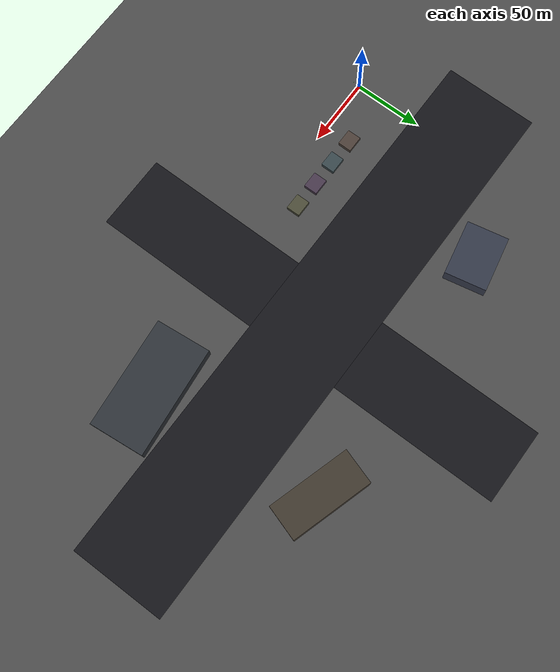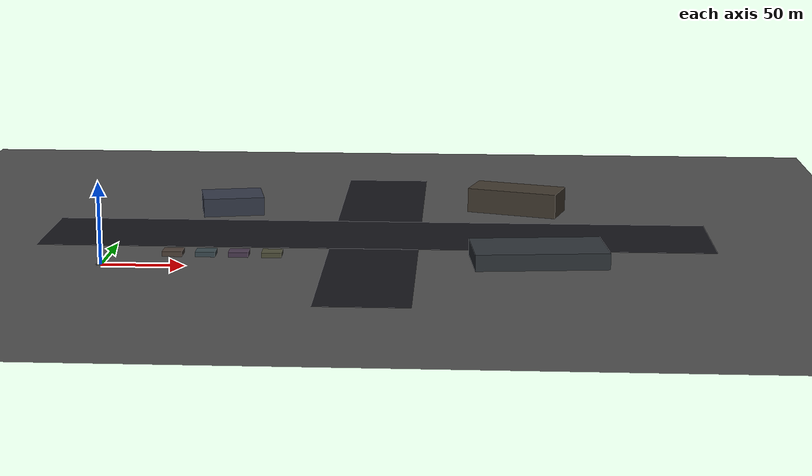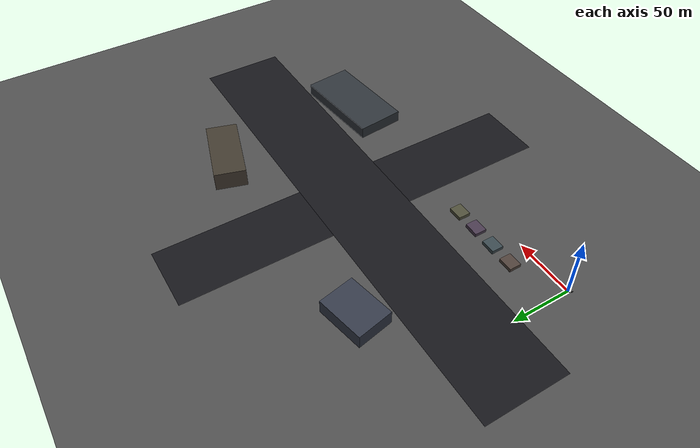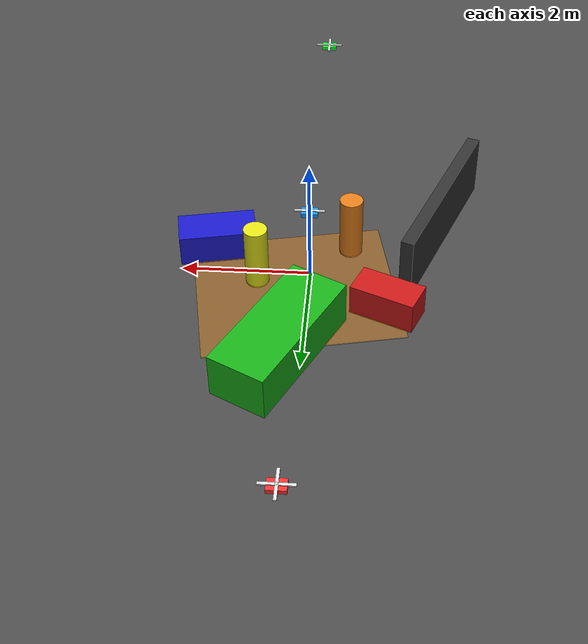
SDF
<?xml version="1.0" ?>
<sdf version="1.7">
  <world name="atlas_demo_world">

    <!-- Inline sun light (avoids external model://sun dependency). -->
    <light name="sun" type="directional">
      <cast_shadows>true</cast_shadows>
      <pose>0 0 10 0 0 0</pose>
      <diffuse>1 1 1 1</diffuse>
      <specular>0.1 0.1 0.1 1</specular>
      <attenuation>
        <range>1000</range>
        <constant>0.9</constant>
        <linear>0.01</linear>
        <quadratic>0.001</quadratic>
      </attenuation>
      <direction>-0.5 0.1 -1</direction>
    </light>

    <!-- Inline ground plane (avoids external model://ground_plane dependency). -->
    <model name="ground_plane">
      <static>true</static>
      <pose>0 0 0 0 0 0</pose>
      <link name="link">
        <collision name="collision">
          <geometry>
            <plane>
              <normal>0 0 1</normal>
              <size>900 700</size>
            </plane>
          </geometry>
        </collision>
        <visual name="visual">
          <geometry>
            <plane>
              <normal>0 0 1</normal>
              <size>900 700</size>
            </plane>
          </geometry>
          <material>
            <ambient>0.2 0.2 0.2 1</ambient>
            <diffuse>0.3 0.3 0.3 1</diffuse>
          </material>
        </visual>
      </link>
    </model>

    <!-- Gazebo Sim systems required for physics, scene updates, and sensor rendering. -->
    <plugin filename="gz-sim-physics-system" name="gz::sim::systems::Physics" />
    <plugin filename="gz-sim-user-commands-system" name="gz::sim::systems::UserCommands" />
    <plugin filename="gz-sim-scene-broadcaster-system" name="gz::sim::systems::SceneBroadcaster" />
    <plugin filename="gz-sim-sensors-system" name="gz::sim::systems::Sensors">
      <!-- Prefer Ogre1 for maximum compatibility with software rendering (llvmpipe/Xvfb). -->
      <render_engine>ogre</render_engine>
    </plugin>

    <!-- Demo environment: simple suburban block (no external assets).
         Goal: look like a real patrol context, but keep it lightweight/stable.
    -->
    <model name="road_main">
      <static>true</static>
      <pose>160 80 0.01 0 0 0</pose>
      <link name="link">
        <visual name="visual">
          <geometry>
            <plane>
              <normal>0 0 1</normal>
              <size>420 70</size>
            </plane>
          </geometry>
          <material>
            <ambient>0.06 0.06 0.07 1</ambient>
            <diffuse>0.08 0.08 0.10 1</diffuse>
          </material>
        </visual>
      </link>
    </model>

    <model name="road_cross">
      <static>true</static>
      <pose>160 80 0.011 0 0 1.5708</pose>
      <link name="link">
        <visual name="visual">
          <geometry>
            <plane>
              <normal>0 0 1</normal>
              <size>320 55</size>
            </plane>
          </geometry>
          <material>
            <ambient>0.06 0.06 0.07 1</ambient>
            <diffuse>0.08 0.08 0.10 1</diffuse>
          </material>
        </visual>
      </link>
    </model>

    <model name="building_block_1">
      <static>true</static>
      <pose>60 140 6 0 0 0.2</pose>
      <link name="link">
        <collision name="collision"><geometry><box><size>40 30 12</size></box></geometry></collision>
        <visual name="visual">
          <geometry><box><size>40 30 12</size></box></geometry>
          <material><ambient>0.20 0.22 0.28 1</ambient><diffuse>0.20 0.22 0.28 1</diffuse></material>
        </visual>
      </link>
    </model>

    <model name="building_block_2">
      <static>true</static>
      <pose>250 150 8 0 0 -0.3</pose>
      <link name="link">
        <collision name="collision"><geometry><box><size>60 26 16</size></box></geometry></collision>
        <visual name="visual">
          <geometry><box><size>60 26 16</size></box></geometry>
          <material><ambient>0.25 0.22 0.18 1</ambient><diffuse>0.25 0.22 0.18 1</diffuse></material>
        </visual>
      </link>
    </model>

    <model name="warehouse_1">
      <static>true</static>
      <pose>260 20 5 0 0 0.1</pose>
      <link name="link">
        <collision name="collision"><geometry><box><size>80 40 10</size></box></geometry></collision>
        <visual name="visual">
          <geometry><box><size>80 40 10</size></box></geometry>
          <material><ambient>0.18 0.20 0.22 1</ambient><diffuse>0.18 0.20 0.22 1</diffuse></material>
        </visual>
      </link>
    </model>

    <model name="houses_row">
      <static>true</static>
      <pose>40 20 1.5 0 0 0</pose>
      <link name="link">
        <visual name="house1"><pose>0 0 1.5 0 0 0</pose><geometry><box><size>12 10 3</size></box></geometry><material><ambient>0.30 0.25 0.22 1</ambient><diffuse>0.30 0.25 0.22 1</diffuse></material></visual>
        <visual name="house2"><pose>20 0 1.5 0 0 0</pose><geometry><box><size>12 10 3</size></box></geometry><material><ambient>0.22 0.28 0.30 1</ambient><diffuse>0.22 0.28 0.30 1</diffuse></material></visual>
        <visual name="house3"><pose>40 0 1.5 0 0 0</pose><geometry><box><size>12 10 3</size></box></geometry><material><ambient>0.28 0.22 0.30 1</ambient><diffuse>0.28 0.22 0.30 1</diffuse></material></visual>
        <visual name="house4"><pose>60 0 1.5 0 0 0</pose><geometry><box><size>12 10 3</size></box></geometry><material><ambient>0.30 0.30 0.22 1</ambient><diffuse>0.30 0.30 0.22 1</diffuse></material></visual>
      </link>
    </model>

    <!-- A few simple static "vehicle-like" props and obstacles. -->
    <model name="vehicle_box_1">
      <static>true</static>
      <pose>1.5 -0.5 0.25 0 0 0.2</pose>
      <link name="link">
        <collision name="collision">
          <geometry>
            <box><size>1.2 0.6 0.5</size></box>
          </geometry>
        </collision>
        <visual name="visual">
          <geometry>
            <box><size>1.2 0.6 0.5</size></box>
          </geometry>
          <material>
            <ambient>0.1 0.1 0.8 1</ambient>
            <diffuse>0.1 0.1 0.8 1</diffuse>
          </material>
        </visual>
      </link>
    </model>

    <model name="vehicle_box_2">
      <static>true</static>
      <pose>-1.2 0.8 0.25 0 0 -0.4</pose>
      <link name="link">
        <collision name="collision">
          <geometry>
            <box><size>1.0 0.5 0.5</size></box>
          </geometry>
        </collision>
        <visual name="visual">
          <geometry>
            <box><size>1.0 0.5 0.5</size></box>
          </geometry>
          <material>
            <ambient>0.8 0.1 0.1 1</ambient>
            <diffuse>0.8 0.1 0.1 1</diffuse>
          </material>
        </visual>
      </link>
    </model>

    <model name="obstacle_wall">
      <static>true</static>
      <pose>-2 -1 0.5 0 0 1.2</pose>
      <link name="link">
        <collision name="collision">
          <geometry>
            <box><size>3.0 0.2 1.0</size></box>
          </geometry>
        </collision>
        <visual name="visual">
          <geometry>
            <box><size>3.0 0.2 1.0</size></box>
          </geometry>
          <material>
            <ambient>0.2 0.2 0.2 1</ambient>
            <diffuse>0.2 0.2 0.2 1</diffuse>
          </material>
        </visual>
      </link>
    </model>

    <!-- Additional colorful demo props to make the camera feed presentation-friendly. -->
    <model name="truck_box_1">
      <static>true</static>
      <pose>0.3 1.8 0.35 0 0 1.1</pose>
      <link name="link">
        <collision name="collision">
          <geometry>
            <box><size>2.2 0.9 0.7</size></box>
          </geometry>
        </collision>
        <visual name="visual">
          <geometry>
            <box><size>2.2 0.9 0.7</size></box>
          </geometry>
          <material>
            <ambient>0.1 0.7 0.1 1</ambient>
            <diffuse>0.1 0.7 0.1 1</diffuse>
          </material>
        </visual>
      </link>
    </model>

    <model name="person_marker_1">
      <static>true</static>
      <pose>0.8 0.2 0.5 0 0 0</pose>
      <link name="link">
        <collision name="collision">
          <geometry>
            <cylinder>
              <radius>0.18</radius>
              <length>1.0</length>
            </cylinder>
          </geometry>
        </collision>
        <visual name="visual">
          <geometry>
            <cylinder>
              <radius>0.18</radius>
              <length>1.0</length>
            </cylinder>
          </geometry>
          <material>
            <ambient>0.9 0.9 0.1 1</ambient>
            <diffuse>0.9 0.9 0.1 1</diffuse>
          </material>
        </visual>
      </link>
    </model>

    <model name="person_marker_2">
      <static>true</static>
      <pose>-0.6 -0.6 0.5 0 0 0</pose>
      <link name="link">
        <collision name="collision">
          <geometry>
            <cylinder>
              <radius>0.18</radius>
              <length>1.0</length>
            </cylinder>
          </geometry>
        </collision>
        <visual name="visual">
          <geometry>
            <cylinder>
              <radius>0.18</radius>
              <length>1.0</length>
            </cylinder>
          </geometry>
          <material>
            <ambient>0.9 0.5 0.1 1</ambient>
            <diffuse>0.9 0.5 0.1 1</diffuse>
          </material>
        </visual>
      </link>
    </model>

    <!-- Orange translucent "restricted zone" marker (image-space demo alignment is handled in vision_node). -->
    <model name="restricted_zone_marker">
      <static>true</static>
      <pose>0.2 0.4 0.01 0 0 0.2</pose>
      <link name="link">
        <collision name="collision">
          <geometry>
            <box><size>3.0 2.5 0.02</size></box>
          </geometry>
        </collision>
        <visual name="visual">
          <geometry>
            <box><size>3.0 2.5 0.02</size></box>
          </geometry>
          <material>
            <ambient>1.0 0.55 0.0 0.35</ambient>
            <diffuse>1.0 0.55 0.0 0.35</diffuse>
          </material>
        </visual>
      </link>
    </model>

    <!-- Demo UAV visuals (pose is driven by gazebo_swarm_visualizer_node). -->
    <model name="demo_uav_1">
      <static>false</static>
      <pose>0 0 1.2 0 0 0</pose>
      <link name="base_link">
        <inertial>
          <mass>1.0</mass>
          <inertia>
            <ixx>0.02</ixx><iyy>0.02</iyy><izz>0.04</izz>
            <ixy>0</ixy><ixz>0</ixz><iyz>0</iyz>
          </inertia>
        </inertial>
        <visual name="body">
          <geometry><box><size>0.25 0.18 0.06</size></box></geometry>
          <material><ambient>0.1 0.6 1.0 1</ambient><diffuse>0.1 0.6 1.0 1</diffuse></material>
        </visual>
        <visual name="arm_x">
          <geometry><box><size>0.45 0.04 0.02</size></box></geometry>
          <pose>0 0 0.03 0 0 0</pose>
          <material><ambient>0.9 0.9 0.9 1</ambient><diffuse>0.9 0.9 0.9 1</diffuse></material>
        </visual>
        <visual name="arm_y">
          <geometry><box><size>0.04 0.45 0.02</size></box></geometry>
          <pose>0 0 0.03 0 0 0</pose>
          <material><ambient>0.9 0.9 0.9 1</ambient><diffuse>0.9 0.9 0.9 1</diffuse></material>
        </visual>
      </link>
    </model>

    <model name="demo_uav_2">
      <static>false</static>
      <pose>0 -5 1.2 0 0 0</pose>
      <link name="base_link">
        <inertial>
          <mass>1.0</mass>
          <inertia>
            <ixx>0.02</ixx><iyy>0.02</iyy><izz>0.04</izz>
            <ixy>0</ixy><ixz>0</ixz><iyz>0</iyz>
          </inertia>
        </inertial>
        <visual name="body">
          <geometry><box><size>0.25 0.18 0.06</size></box></geometry>
          <material><ambient>0.1 1.0 0.2 1</ambient><diffuse>0.1 1.0 0.2 1</diffuse></material>
        </visual>
        <visual name="arm_x">
          <geometry><box><size>0.45 0.04 0.02</size></box></geometry>
          <pose>0 0 0.03 0 0 0</pose>
          <material><ambient>0.9 0.9 0.9 1</ambient><diffuse>0.9 0.9 0.9 1</diffuse></material>
        </visual>
        <visual name="arm_y">
          <geometry><box><size>0.04 0.45 0.02</size></box></geometry>
          <pose>0 0 0.03 0 0 0</pose>
          <material><ambient>0.9 0.9 0.9 1</ambient><diffuse>0.9 0.9 0.9 1</diffuse></material>
        </visual>
      </link>
    </model>

    <model name="demo_uav_3">
      <static>false</static>
      <pose>0 5 1.2 0 0 0</pose>
      <link name="base_link">
        <inertial>
          <mass>1.0</mass>
          <inertia>
            <ixx>0.02</ixx><iyy>0.02</iyy><izz>0.04</izz>
            <ixy>0</ixy><ixz>0</ixz><iyz>0</iyz>
          </inertia>
        </inertial>
        <visual name="body">
          <geometry><box><size>0.25 0.18 0.06</size></box></geometry>
          <material><ambient>1.0 0.2 0.2 1</ambient><diffuse>1.0 0.2 0.2 1</diffuse></material>
        </visual>
        <visual name="arm_x">
          <geometry><box><size>0.45 0.04 0.02</size></box></geometry>
          <pose>0 0 0.03 0 0 0</pose>
          <material><ambient>0.9 0.9 0.9 1</ambient><diffuse>0.9 0.9 0.9 1</diffuse></material>
        </visual>
        <visual name="arm_y">
          <geometry><box><size>0.04 0.45 0.02</size></box></geometry>
          <pose>0 0 0.03 0 0 0</pose>
          <material><ambient>0.9 0.9 0.9 1</ambient><diffuse>0.9 0.9 0.9 1</diffuse></material>
        </visual>
      </link>
    </model>

    <!-- Fixed camera looking at the demo area. -->
    <model name="fixed_camera">
      <static>true</static>
      <!-- Elevated diagonal / top-down view aimed at the origin. -->
      <pose>0 0 8.0 0 1.57 0.35</pose>
      <link name="link">
        <sensor name="demo_camera" type="camera">
          <always_on>true</always_on>
          <update_rate>20</update_rate>
          <visualize>false</visualize>
          <camera>
            <horizontal_fov>1.047</horizontal_fov>
            <image>
              <width>640</width>
              <height>480</height>
              <format>R8G8B8</format>
            </image>
            <clip>
              <near>0.1</near>
              <far>100</far>
            </clip>
          </camera>
        </sensor>
      </link>
    </model>

  </world>
</sdf>
